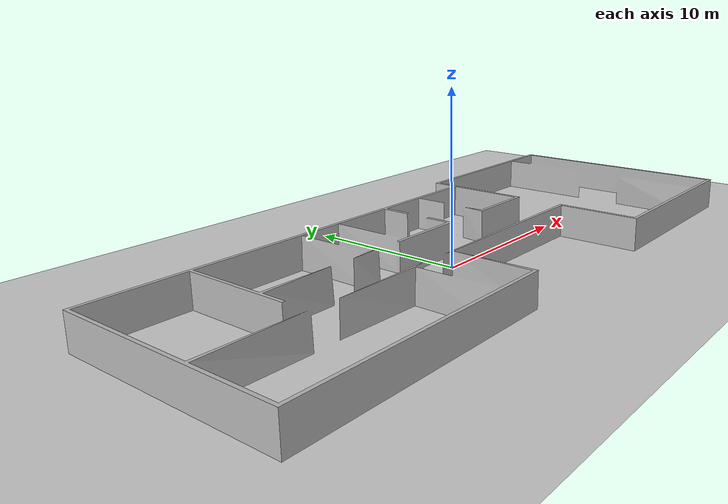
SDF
<sdf version='1.10'>
  <world name='empty'>
    <physics name='1ms' type='ignored'>
      <max_step_size>0.001</max_step_size>
      <real_time_factor>1</real_time_factor>
      <real_time_update_rate>1000</real_time_update_rate>
    </physics>
    <plugin name='gz::sim::systems::Physics' filename='gz-sim-physics-system'/>
    <plugin name='gz::sim::systems::UserCommands' filename='gz-sim-user-commands-system'/>
    <plugin name='gz::sim::systems::SceneBroadcaster' filename='gz-sim-scene-broadcaster-system'/>
    <plugin name='gz::sim::systems::Contact' filename='gz-sim-contact-system'/>
    <gravity>0 0 -9.8</gravity>
    <magnetic_field>5.5645e-06 2.2876e-05 -4.2388e-05</magnetic_field>
    <atmosphere type='adiabatic'/>
    <scene>
      <ambient>0.4 0.4 0.4 1</ambient>
      <background>0.7 0.7 0.7 1</background>
      <shadows>true</shadows>
    </scene>

    <model name='ground_plane'>
      <static>true</static>
      <link name='link'>
        <collision name='collision'>
          <geometry>
            <plane>
              <normal>0 0 1</normal>
              <size>100 100</size>
            </plane>
          </geometry>
          <surface>
            <friction>
              <ode/>
            </friction>
            <bounce/>
            <contact/>
          </surface>
        </collision>
        <visual name='visual'>
          <geometry>
            <plane>
              <normal>0 0 1</normal>
              <size>100 100</size>
            </plane>
          </geometry>
          <material>
            <ambient>0.8 0.8 0.8 1</ambient>
            <diffuse>0.8 0.8 0.8 1</diffuse>
            <specular>0.8 0.8 0.8 1</specular>
          </material>
        </visual>
        <pose>0 0 0 0 0 0</pose>
      </link>
      <pose>0 0 0 0 0 0</pose>
      <self_collide>false</self_collide>
    </model>

    <model name='edgesWorld'>
      <static>true</static>
      <link name='link'>
        <visual name='visual'>
          <geometry>
            <mesh>
              <uri>model://edgesWorld.obj</uri>
            </mesh>
          </geometry>
        </visual>
        <collision name='collision'>
          <geometry>
            <mesh>
              <uri>model://edgesWorld.obj</uri>
            </mesh>
          </geometry>
        </collision>
        <pose>0 0 0 0 0 0</pose>
      </link>
      <pose>8.979 1.523 -0.055 0 0 0</pose>
      <self_collide>false</self_collide>
    </model>

    <light name='sun' type='directional'>
      <pose>0 0 10 0 0 0</pose>
      <cast_shadows>true</cast_shadows>
      <intensity>1</intensity>
      <direction>-0.5 0.1 -0.9</direction>
      <diffuse>0.8 0.8 0.8 1</diffuse>
      <specular>0.2 0.2 0.2 1</specular>
      <attenuation>
        <range>1000</range>
        <linear>0.01</linear>
        <constant>0.9</constant>
        <quadratic>0.001</quadratic>
      </attenuation>
      <spot>
        <inner_angle>0</inner_angle>
        <outer_angle>0</outer_angle>
        <falloff>0</falloff>
      </spot>
    </light>
  </world>
</sdf>
